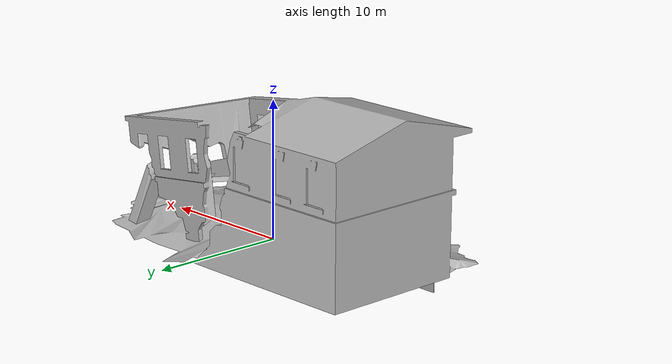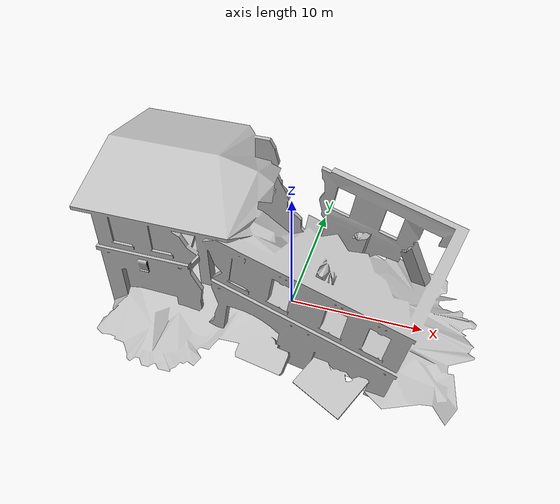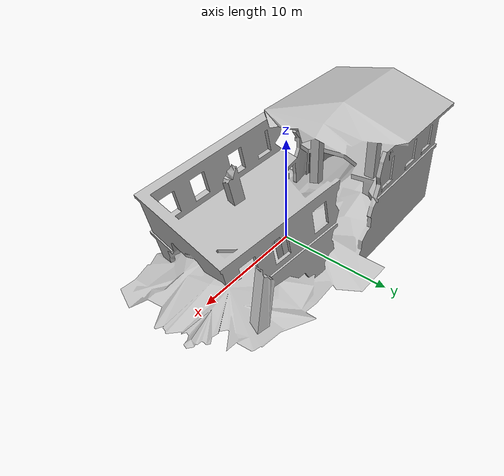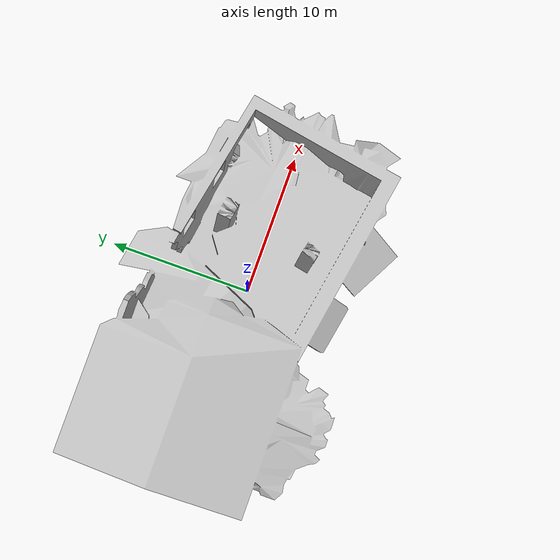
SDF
<?xml version='1.0'?>
<sdf version='1.6'>
  <model name='collapsed_fire_station'>
    <link name='link'>
      <self_collide>0</self_collide>
      <enable_wind>0</enable_wind>
      <kinematic>0</kinematic>
      <pose frame=''>0 0 0 0 -0 0</pose>
      <visual name='visual'>
        <geometry>
          <mesh>
            <uri>model://collapsed_fire_station/meshes/collapsed_fire_station.dae</uri>
          </mesh>
        </geometry>
        <pose frame=''>0 0 0 0 -0 0</pose>
        <transparency>0</transparency>
        <cast_shadows>1</cast_shadows>
      </visual>
      <collision name='collision'>
        <laser_retro>0</laser_retro>
        <max_contacts>10</max_contacts>
        <pose frame=''>0 0 0 0 -0 0</pose>
        <geometry>
          <mesh>
            <uri>/home/marceloSimon/usar_multirobot/src/usar_gazebo/models/collapsed_fire_station/meshes/collapsed_fire_station.dae</uri>
            <scale>1 1 1</scale>
          </mesh>
        </geometry>
        <surface>
          <friction>
            <ode>
              <mu>1</mu>
              <mu2>1</mu2>
              <fdir1>0 0 0</fdir1>
              <slip1>0</slip1>
              <slip2>0</slip2>
            </ode>
            <torsional>
              <coefficient>1</coefficient>
              <patch_radius>0</patch_radius>
              <surface_radius>0</surface_radius>
              <use_patch_radius>1</use_patch_radius>
              <ode>
                <slip>0</slip>
              </ode>
            </torsional>
          </friction>
          <bounce>
            <restitution_coefficient>0</restitution_coefficient>
            <threshold>1e+06</threshold>
          </bounce>
          <contact>
            <collide_without_contact>0</collide_without_contact>
            <collide_without_contact_bitmask>1</collide_without_contact_bitmask>
            <collide_bitmask>1</collide_bitmask>
            <ode>
              <soft_cfm>0</soft_cfm>
              <soft_erp>0.2</soft_erp>
              <kp>1e+13</kp>
              <kd>1</kd>
              <max_vel>0.01</max_vel>
              <min_depth>0</min_depth>
            </ode>
            <bullet>
              <split_impulse>1</split_impulse>
              <split_impulse_penetration_threshold>-0.01</split_impulse_penetration_threshold>
              <soft_cfm>0</soft_cfm>
              <soft_erp>0.2</soft_erp>
              <kp>1e+13</kp>
              <kd>1</kd>
            </bullet>
          </contact>
        </surface>
      </collision>
    </link>
    <link name='link_1'>
      <inertial>
        <mass>1.43754</mass>
        <inertia>
          <ixx>6.70119</ixx>
          <ixy>0</ixy>
          <ixz>0</ixz>
          <iyy>4.05151</iyy>
          <iyz>0</iyz>
          <izz>2.65036</izz>
        </inertia>
        <pose frame=''>0 0 0 0 -0 0</pose>
      </inertial>
      <pose frame=''>-10.0033 -3.10849 1.5 0 0 -1.57426</pose>
      <self_collide>0</self_collide>
      <enable_wind>0</enable_wind>
      <kinematic>0</kinematic>
      <visual name='visual'>
        <pose frame=''>0 0 0 0 -0 0</pose>
        <geometry>
          <box>
            <size>0.053193 4.70333 5.81528</size>
          </box>
        </geometry>
        <material>
          <lighting>1</lighting>
          <script>
            <uri>file://media/materials/scripts/gazebo.material</uri>
            <name>Gazebo/Grey</name>
          </script>
        </material>
        <transparency>0</transparency>
        <cast_shadows>1</cast_shadows>
      </visual>
      <collision name='collision'>
        <laser_retro>0</laser_retro>
        <max_contacts>10</max_contacts>
        <pose frame=''>0 0 0 0 -0 0</pose>
        <geometry>
          <box>
            <size>0.053193 4.70333 5.81528</size>
          </box>
        </geometry>
        <surface>
          <friction>
            <ode>
              <mu>1</mu>
              <mu2>1</mu2>
              <fdir1>0 0 0</fdir1>
              <slip1>0</slip1>
              <slip2>0</slip2>
            </ode>
            <torsional>
              <coefficient>1</coefficient>
              <patch_radius>0</patch_radius>
              <surface_radius>0</surface_radius>
              <use_patch_radius>1</use_patch_radius>
              <ode>
                <slip>0</slip>
              </ode>
            </torsional>
          </friction>
          <bounce>
            <restitution_coefficient>0</restitution_coefficient>
            <threshold>1e+06</threshold>
          </bounce>
          <contact>
            <collide_without_contact>0</collide_without_contact>
            <collide_without_contact_bitmask>1</collide_without_contact_bitmask>
            <collide_bitmask>1</collide_bitmask>
            <ode>
              <soft_cfm>0</soft_cfm>
              <soft_erp>0.2</soft_erp>
              <kp>1e+13</kp>
              <kd>1</kd>
              <max_vel>0.01</max_vel>
              <min_depth>0</min_depth>
            </ode>
            <bullet>
              <split_impulse>1</split_impulse>
              <split_impulse_penetration_threshold>-0.01</split_impulse_penetration_threshold>
              <soft_cfm>0</soft_cfm>
              <soft_erp>0.2</soft_erp>
              <kp>1e+13</kp>
              <kd>1</kd>
            </bullet>
          </contact>
        </surface>
      </collision>
    </link>
    <static>1</static>
    <allow_auto_disable>1</allow_auto_disable>
  </model>
</sdf>
